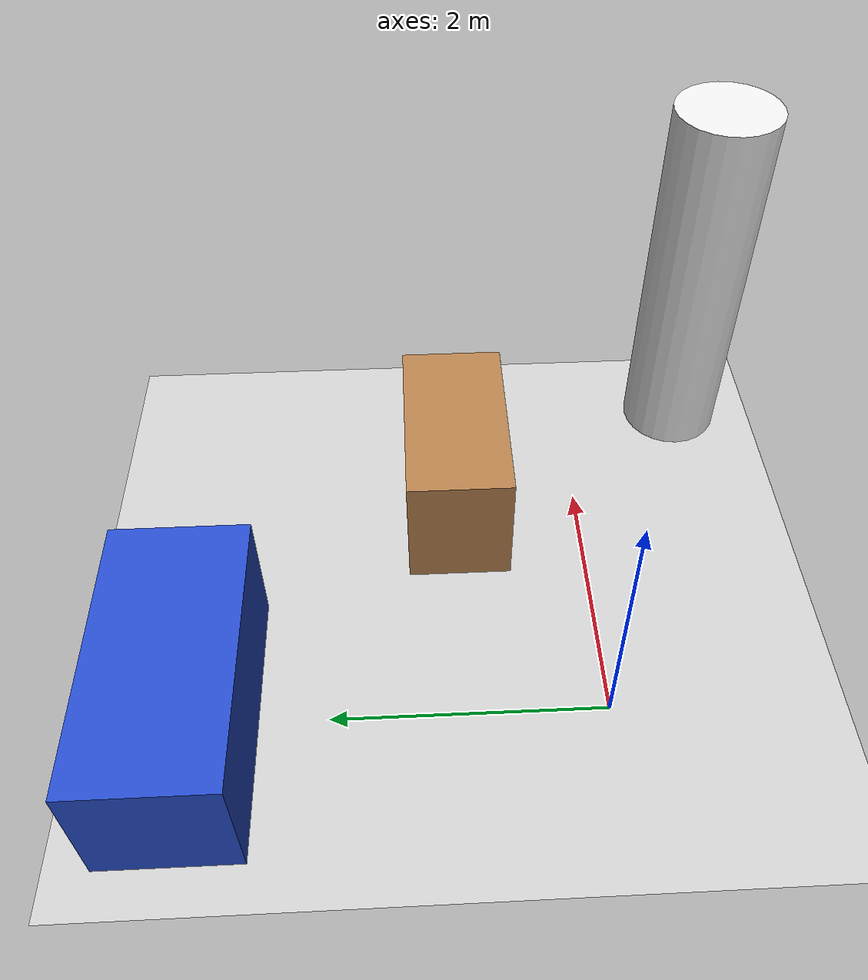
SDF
<?xml version="1.0" ?>
<sdf version="1.8">
  <world name="simple_home">
    <physics name="1ms" type="ignored">
      <max_step_size>0.005</max_step_size>
      <real_time_factor>1.0</real_time_factor>
    </physics>
    <plugin filename="gz-sim-physics-system" name="gz::sim::systems::Physics"></plugin>
    <plugin filename="gz-sim-user-commands-system" name="gz::sim::systems::UserCommands"></plugin>
    <plugin filename="gz-sim-scene-broadcaster-system" name="gz::sim::systems::SceneBroadcaster"></plugin>
    <plugin filename="gz-sim-sensors-system" name="gz::sim::systems::Sensors">
      <render_engine>ogre2</render_engine>
    </plugin>
    <plugin filename="gz-sim-imu-system" name="gz::sim::systems::Imu"></plugin>

    <light type="directional" name="sun">
      <cast_shadows>true</cast_shadows>
      <pose>0 0 10 0 0 0</pose>
      <diffuse>0.8 0.8 0.8 1</diffuse>
      <specular>0.2 0.2 0.2 1</specular>
      <attenuation>
        <range>1000</range>
        <constant>0.9</constant>
        <linear>0.01</linear>
        <quadratic>0.001</quadratic>
      </attenuation>
      <direction>-0.5 0.1 -0.9</direction>
    </light>

    <model name="ground_plane">
      <static>true</static>
      <link name="link">
        <collision name="collision">
          <geometry>
            <plane>
              <normal>0 0 1</normal>
              <size>20 20</size>
            </plane>
          </geometry>
        </collision>
        <visual name="visual">
          <geometry>
            <plane>
              <normal>0 0 1</normal>
              <size>20 20</size>
            </plane>
          </geometry>
          <material>
            <script>
              <uri>file://media/materials/scripts/gazebo.material</uri>
              <name>Gazebo/Grey</name>
            </script>
          </material>
        </visual>
      </link>
    </model>

    <!-- Obstacle 1: A Table -->
    <model name="table">
      <static>true</static>
      <pose>2.0 1.0 0.5 0 0 0</pose>
      <link name="link">
        <collision name="collision">
          <geometry>
            <box><size>1.5 0.8 1.0</size></box>
          </geometry>
        </collision>
        <visual name="visual">
          <geometry>
            <box><size>1.5 0.8 1.0</size></box>
          </geometry>
          <material>
            <script>
              <uri>file://media/materials/scripts/gazebo.material</uri>
              <name>Gazebo/Wood</name>
            </script>
          </material>
        </visual>
      </link>
    </model>

    <!-- Obstacle 2: A Couch -->
    <model name="couch">
      <static>true</static>
      <pose>0.0 3.0 0.5 0 0 0</pose>
      <link name="link">
        <collision name="collision">
          <geometry>
            <box><size>2.0 1.0 1.0</size></box>
          </geometry>
        </collision>
        <visual name="visual">
          <geometry>
            <box><size>2.0 1.0 1.0</size></box>
          </geometry>
          <material>
            <script>
              <uri>file://media/materials/scripts/gazebo.material</uri>
              <name>Gazebo/Blue</name>
            </script>
          </material>
        </visual>
      </link>
    </model>

    <!-- Obstacle 3: A Pillar -->
    <model name="pillar">
      <static>true</static>
      <pose>3.0 -1.0 1.5 0 0 0</pose>
      <link name="link">
        <collision name="collision">
          <geometry>
            <cylinder><radius>0.4</radius><length>3.0</length></cylinder>
          </geometry>
        </collision>
        <visual name="visual">
          <geometry>
            <cylinder><radius>0.4</radius><length>3.0</length></cylinder>
          </geometry>
          <material>
            <script>
              <uri>file://media/materials/scripts/gazebo.material</uri>
              <name>Gazebo/White</name>
            </script>
          </material>
        </visual>
      </link>
    </model>

  </world>
</sdf>
